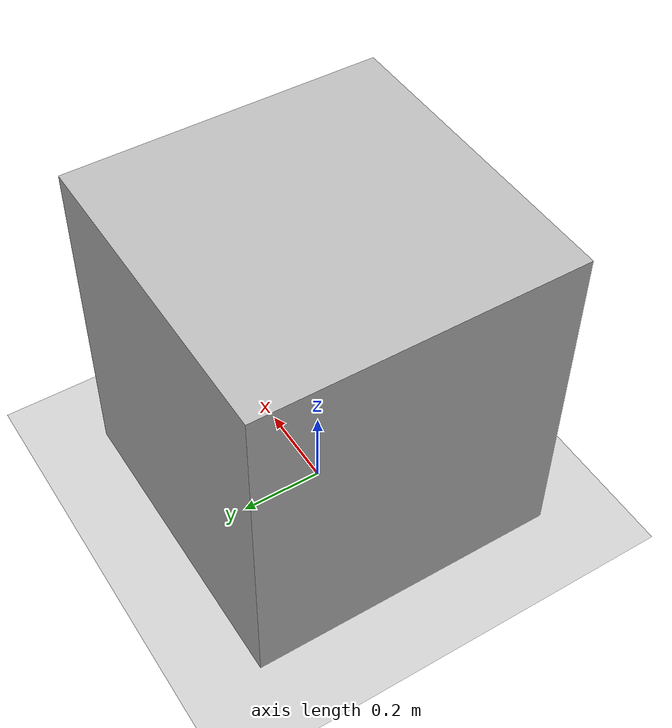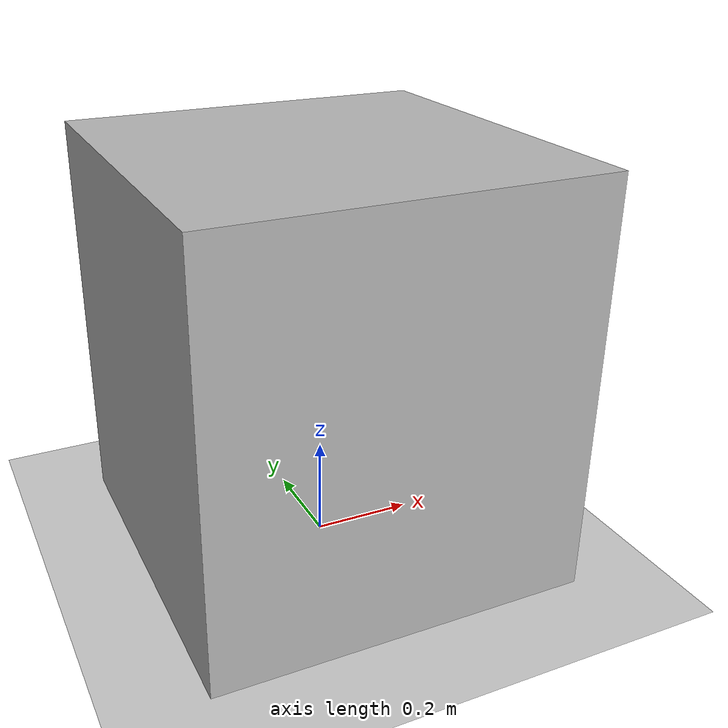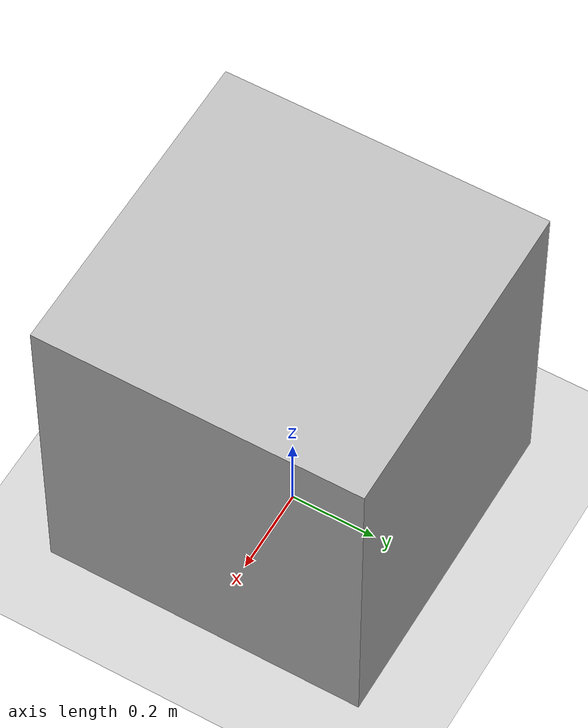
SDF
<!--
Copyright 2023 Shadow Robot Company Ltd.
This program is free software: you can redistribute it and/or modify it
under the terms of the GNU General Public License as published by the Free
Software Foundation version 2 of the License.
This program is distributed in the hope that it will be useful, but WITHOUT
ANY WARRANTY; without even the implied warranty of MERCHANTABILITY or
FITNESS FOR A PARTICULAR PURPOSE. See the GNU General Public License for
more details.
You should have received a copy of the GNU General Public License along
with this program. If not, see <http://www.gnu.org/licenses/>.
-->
<?xml version="1.0" ?>

<sdf version="1.4">
  <world name="default">
    <!-- Floor and Ceiling -->
    <include>
      <uri>model://ground</uri>
      <name>ground</name>
      <pose>-0.20 0.0 0.0 0 0 0</pose>
    </include>
    <light type="directional" name="lab_light">
      <pose>0.86 1.96 2.5 -1.55 0 0</pose>
      <diffuse>.8 .8 .8 1</diffuse>
      <specular>.2 .2 .2 1</specular>
      <attenuation>
        <range>20</range>
        <constant>0.9</constant>
        <linear>0.01</linear>
        <quadratic>0.001</quadratic>
      </attenuation>
      <direction>0 0 -1</direction>
      <cast_shadows>true</cast_shadows>
    </light>
    <include>
      <uri>model://square_stand</uri>
      <static>true</static>
      <name>square_stand</name>
      <pose>0 0 0.41 0 0 0</pose>
    </include>
    <physics type="ode">
      <gravity>0.000000 0.000000 -9.810000</gravity>
      <ode>
        <solver>
          <type>quick</type>
          <iters>100</iters>
          <precon_iters>0</precon_iters>
          <sor>1.000000</sor>
        </solver>
        <constraints>
          <cfm>0.000000</cfm>
          <erp>0.500000</erp>
          <contact_max_correcting_vel>1000.000000</contact_max_correcting_vel>
          <contact_surface_layer>0.00000</contact_surface_layer>
        </constraints>
      </ode>
      <real_time_factor>1.0</real_time_factor>
      <max_step_size>0.001000</max_step_size>
    </physics>
    <scene>
      <ambient>0.4 0.4 0.4 1</ambient>
      <background>0.7 0.7 1 1</background>
      <shadows>1</shadows>
    </scene>
    <gui fullscreen='0'>
      <camera name='user_camera'>
        <pose frame=''>2.8784 4.2586 1.43117 0 0.083643 -2.30699</pose>
        <view_controller>orbit</view_controller>
      </camera>
    </gui>
  </world>
</sdf>

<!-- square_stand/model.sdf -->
<sdf version="1.4">
<model name="square_stand">
  <static>true</static>
    <link name="link">
      <inertial>
        <mass>1.0</mass>
        <inertia>
          <!-- http://answers.gazebosim.org/question/4372/the-inertia-matrix-explained/ -->
          <ixx>0.083</ixx>       <!-- for a box: ixx = 0.083 * mass * (y*y + z*z) -->
          <ixy>0.0</ixy>         <!-- for a box: ixy = 0 -->
          <ixz>0.0</ixz>         <!-- for a box: ixz = 0 -->
          <iyy>0.083</iyy>       <!-- for a box: iyy = 0.083 * mass * (x*x + z*z) -->
          <iyz>0.0</iyz>         <!-- for a box: iyz = 0 -->
          <izz>0.083</izz>       <!-- for a box: izz = 0.083 * mass * (x*x + y*y) -->
        </inertia>
      </inertial>
      <collision name="collision">
        <geometry>
          <box>
            <size>0.75 0.75 0.82</size>
          </box>
        </geometry>
      </collision>
      <visual name="visual">
        <geometry>
          <box>
            <size>0.75 0.75 0.82</size>
          </box>
        </geometry>
      </visual>
    </link>
  </model>
</sdf>
